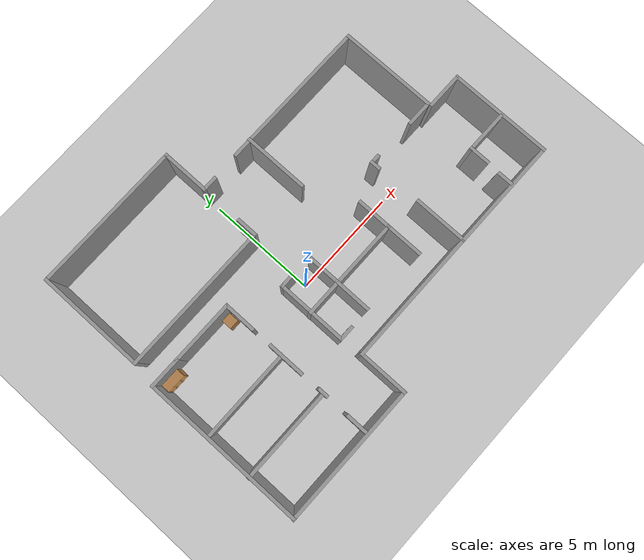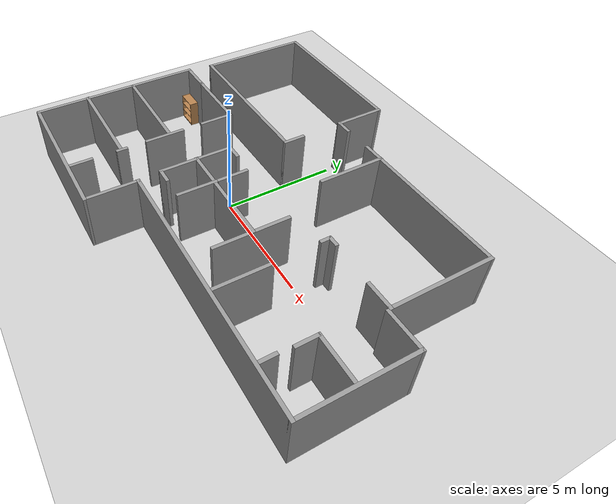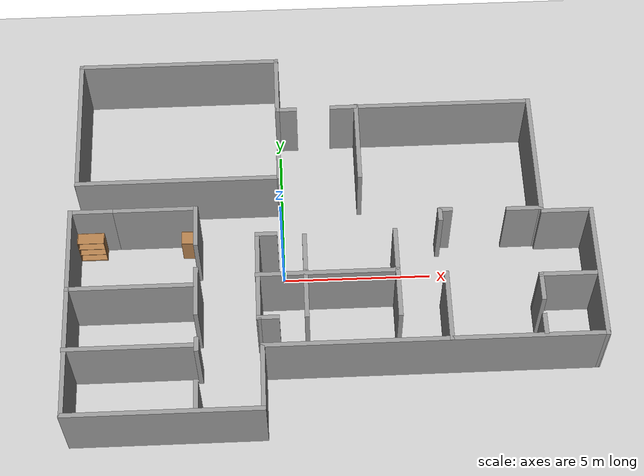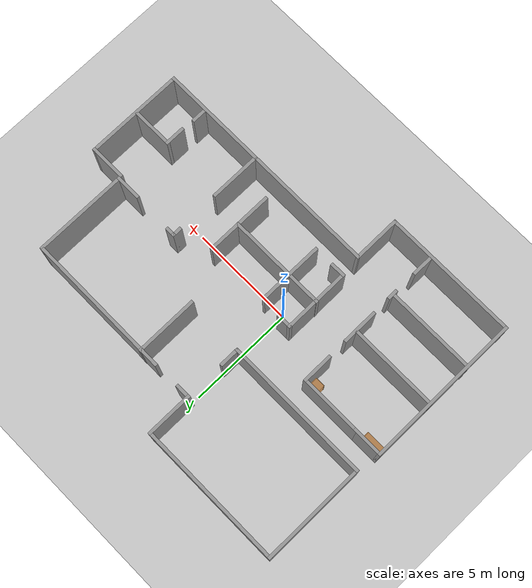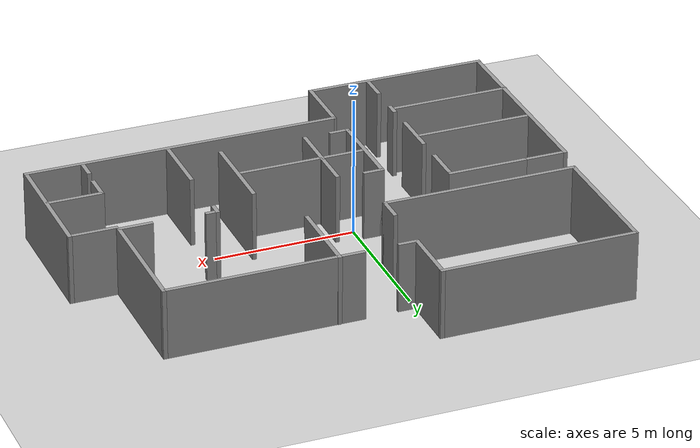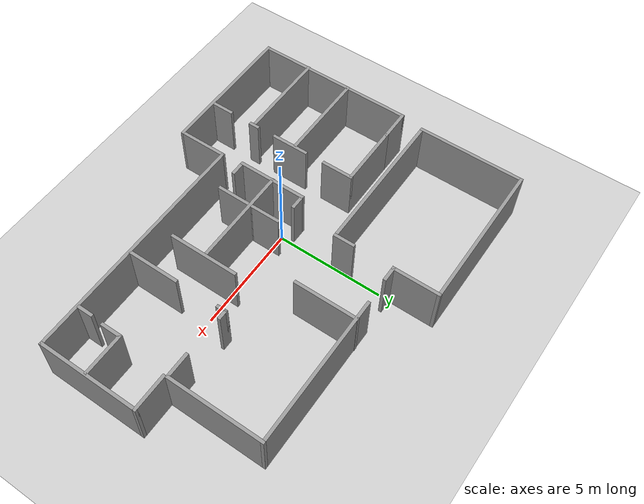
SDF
<sdf version="1.7">
 <world name="default">
  <light name="sun" type="directional">
   <pose>0 0 10 0 -0 0</pose>
   <diffuse>0.8 0.8 0.8 1</diffuse>
   <specular>0.2 0.2 0.2 1</specular>
   <attenuation>
    <range>1000</range>
    <constant>0.9</constant>
    <linear>0.01</linear>
    <quadratic>0.001</quadratic>
   </attenuation>
   <direction>-0.5 0.1 -0.9</direction>
   <spot><inner_angle>0</inner_angle><outer_angle>0</outer_angle><falloff>0</falloff></spot>
  </light>
  <model name="ground_plane">
   <static>1</static>
   <link name="link">
    <collision name="collision">
     <geometry><plane><normal>0 0 1</normal><size>100 100</size></plane></geometry>
     <surface><friction><ode><mu>100</mu><mu2>50</mu2></ode></friction></surface>
    </collision>
    <visual name="visual">
     <cast_shadows>0</cast_shadows>
     <geometry><plane><normal>0 0 1</normal><size>100 100</size></plane></geometry>
     <material>
      <script><uri>file://media/materials/scripts/gazebo.material</uri><name>Gazebo/Grey</name></script>
     </material>
    </visual>
   </link>
  </model>
  <gravity>0 0 -9.8</gravity>
  <magnetic_field>6e-06 2.3e-05 -4.2e-05</magnetic_field>
  <atmosphere type="adiabatic"/>
  <physics type="ode">
   <max_step_size>0.001</max_step_size>
   <real_time_factor>1</real_time_factor>
   <real_time_update_rate>1000</real_time_update_rate>
  </physics>
  <scene><ambient>0.4 0.4 0.4 1</ambient><background>0.7 0.7 0.7 1</background><shadows>1</shadows></scene>
  <audio><device>default</device></audio>
  <spherical_coordinates>
   <surface_model>EARTH_WGS84</surface_model>
   <latitude_deg>0</latitude_deg>
   <longitude_deg>0</longitude_deg>
   <elevation>0</elevation>
   <heading_deg>0</heading_deg>
  </spherical_coordinates>
  <model name="Office_demo">
   <pose>1.63534 0.874103 0 0 -0 0</pose>
   <link name="Wall_10">
    <collision name="Wall_10_Collision">
     <geometry><box><size>2.25 0.15 2.5</size></box></geometry>
     <pose>0 0 1.25 0 -0 0</pose>
    </collision>
    <visual name="Wall_10_Visual">
     <pose>0 0 1.25 0 -0 0</pose>
     <geometry><box><size>2.25 0.15 2.5</size></box></geometry>
     <material>
      <script><uri>file://media/materials/scripts/gazebo.material</uri><name>Gazebo/Grey</name></script>
      <ambient>1 1 1 1</ambient>
     </material>
     <meta><layer>0</layer></meta>
    </visual>
    <pose>-1.68064 5.6129 0 0 -0 1.5708</pose>
   </link>
   <link name="Wall_11">
    <collision name="Wall_11_Collision">
     <geometry><box><size>7 0.15 2.5</size></box></geometry>
     <pose>0 0 1.25 0 -0 0</pose>
    </collision>
    <visual name="Wall_11_Visual">
     <pose>0 0 1.25 0 -0 0</pose>
     <geometry><box><size>7 0.15 2.5</size></box></geometry>
     <material>
      <script><uri>file://media/materials/scripts/gazebo.material</uri><name>Gazebo/Grey</name></script>
      <ambient>1 1 1 1</ambient>
     </material>
     <meta><layer>0</layer></meta>
    </visual>
    <pose>-5.10564 6.6629 0 0 -0 3.14159</pose>
   </link>
   <link name="Wall_12">
    <collision name="Wall_12_Collision">
     <geometry><box><size>5 0.15 2.5</size></box></geometry>
     <pose>0 0 1.25 0 -0 0</pose>
    </collision>
    <visual name="Wall_12_Visual">
     <pose>0 0 1.25 0 -0 0</pose>
     <geometry><box><size>5 0.15 2.5</size></box></geometry>
     <material>
      <script><uri>file://media/materials/scripts/gazebo.material</uri><name>Gazebo/Grey</name></script>
      <ambient>1 1 1 1</ambient>
     </material>
     <meta><layer>0</layer></meta>
    </visual>
    <pose>-8.53064 4.2379 0 0 -0 -1.5708</pose>
   </link>
   <link name="Wall_13">
    <collision name="Wall_13_Collision">
     <geometry><box><size>7 0.15 2.5</size></box></geometry>
     <pose>0 0 1.25 0 -0 0</pose>
    </collision>
    <visual name="Wall_13_Visual">
     <pose>0 0 1.25 0 -0 0</pose>
     <geometry><box><size>7 0.15 2.5</size></box></geometry>
     <material>
      <script><uri>file://media/materials/scripts/gazebo.material</uri><name>Gazebo/Grey</name></script>
      <ambient>1 1 1 1</ambient>
     </material>
     <meta><layer>0</layer></meta>
    </visual>
    <pose>-5.10564 1.8129 0 0 -0 0</pose>
   </link>
   <link name="Wall_19">
    <collision name="Wall_19_Collision">
     <geometry><box><size>1.5 0.15 2.5</size></box></geometry>
     <pose>0 0 1.25 0 -0 0</pose>
    </collision>
    <visual name="Wall_19_Visual">
     <pose>0 0 1.25 0 -0 0</pose>
     <geometry><box><size>1.5 0.15 2.5</size></box></geometry>
     <material>
      <script><uri>file://media/materials/scripts/gazebo.material</uri><name>Gazebo/Grey</name></script>
      <ambient>1 1 1 1</ambient>
     </material>
     <meta><layer>0</layer></meta>
    </visual>
    <pose>-8.03543 0.695748 0 0 -0 3.14159</pose>
   </link>
   <link name="Wall_21">
    <collision name="Wall_21_Collision">
     <geometry><box><size>6.5 0.15 2.5</size></box></geometry>
     <pose>0 0 1.25 0 -0 0</pose>
    </collision>
    <visual name="Wall_21_Visual">
     <pose>0 0 1.25 0 -0 0</pose>
     <geometry><box><size>6.5 0.15 2.5</size></box></geometry>
     <material>
      <script><uri>file://media/materials/scripts/gazebo.material</uri><name>Gazebo/Grey</name></script>
      <ambient>1 1 1 1</ambient>
     </material>
     <meta><layer>0</layer></meta>
    </visual>
    <pose>-5.54408 -6.6629 0 0 -0 0</pose>
   </link>
   <link name="Wall_22">
    <collision name="Wall_22_Collision">
     <geometry><box><size>2.32687 0.15 2.5</size></box></geometry>
     <pose>0 0 1.25 0 -0 0</pose>
    </collision>
    <visual name="Wall_22_Visual">
     <pose>0 0 1.25 0 -0 0</pose>
     <geometry><box><size>2.32687 0.15 2.5</size></box></geometry>
     <material>
      <script><uri>file://media/materials/scripts/gazebo.material</uri><name>Gazebo/Grey</name></script>
      <ambient>1 1 1 1</ambient>
     </material>
     <meta><layer>0</layer></meta>
    </visual>
    <pose>-2.36902 -5.57446 0 0 -0 1.57074</pose>
   </link>
   <link name="Wall_24">
    <collision name="Wall_24_Collision">
     <geometry><box><size>11.25 0.15 2.5</size></box></geometry>
     <pose>0 0 1.25 0 -0 0</pose>
    </collision>
    <visual name="Wall_24_Visual">
     <pose>0 0 1.25 0 -0 0</pose>
     <geometry><box><size>11.25 0.15 2.5</size></box></geometry>
     <material>
      <script><uri>file://media/materials/scripts/gazebo.material</uri><name>Gazebo/Grey</name></script>
      <ambient>1 1 1 1</ambient>
     </material>
     <meta><layer>0</layer></meta>
    </visual>
    <pose>3.18104 -4.48603 0 0 -0 0</pose>
   </link>
   <link name="Wall_25">
    <collision name="Wall_25_Collision">
     <geometry><box><size>4.75 0.15 2.5</size></box></geometry>
     <pose>0 0 1.25 0 -0 0</pose>
    </collision>
    <visual name="Wall_25_Visual">
     <pose>0 0 1.25 0 -0 0</pose>
     <geometry><box><size>4.75 0.15 2.5</size></box></geometry>
     <material>
      <script><uri>file://media/materials/scripts/gazebo.material</uri><name>Gazebo/Grey</name></script>
      <ambient>1 1 1 1</ambient>
     </material>
     <meta><layer>0</layer></meta>
    </visual>
    <pose>8.73104 -2.18603 0 0 -0 1.5708</pose>
   </link>
   <link name="Wall_26">
    <collision name="Wall_26_Collision">
     <geometry><box><size>1.75 0.15 2.5</size></box></geometry>
     <pose>0 0 1.25 0 -0 0</pose>
    </collision>
    <visual name="Wall_26_Visual">
     <pose>0 0 1.25 0 -0 0</pose>
     <geometry><box><size>1.75 0.15 2.5</size></box></geometry>
     <material>
      <script><uri>file://media/materials/scripts/gazebo.material</uri><name>Gazebo/Grey</name></script>
      <ambient>1 1 1 1</ambient>
     </material>
     <meta><layer>0</layer></meta>
    </visual>
    <pose>7.93104 0.113971 0 0 -0 3.14159</pose>
   </link>
   <link name="Wall_28">
    <collision name="Wall_28_Collision">
     <geometry><box><size>3 0.15 2.5</size></box></geometry>
     <pose>0 0 1.25 0 -0 0</pose>
    </collision>
    <visual name="Wall_28_Visual">
     <pose>0 0 1.25 0 -0 0</pose>
     <geometry><box><size>3 0.15 2.5</size></box></geometry>
     <material>
      <script><uri>file://media/materials/scripts/gazebo.material</uri><name>Gazebo/Grey</name></script>
      <ambient>1 1 1 1</ambient>
     </material>
     <meta><layer>0</layer></meta>
    </visual>
    <pose>-5.93543 0.695748 0 0 -0 0</pose>
   </link>
   <link name="Wall_29">
    <collision name="Wall_29_Collision">
     <geometry><box><size>1.5 0.15 2.5</size></box></geometry>
     <pose>0 0 1.25 0 -0 0</pose>
    </collision>
    <visual name="Wall_29_Visual">
     <pose>0 0 1.25 0 -0 0</pose>
     <geometry><box><size>1.5 0.15 2.5</size></box></geometry>
     <material>
      <script><uri>file://media/materials/scripts/gazebo.material</uri><name>Gazebo/Grey</name></script>
      <ambient>1 1 1 1</ambient>
     </material>
     <meta><layer>0</layer></meta>
    </visual>
    <pose>-4.51043 0.020748 0 0 -0 -1.5708</pose>
   </link>
   <link name="Wall_3">
    <collision name="Wall_3_Collision">
     <geometry><box><size>4.5 0.15 2.5</size></box></geometry>
     <pose>0 0 1.25 0 -0 0</pose>
    </collision>
    <visual name="Wall_3_Visual">
     <pose>0 0 1.25 0 -0 0</pose>
     <geometry><box><size>4.5 0.15 2.5</size></box></geometry>
     <material>
      <script><uri>file://media/materials/scripts/gazebo.material</uri><name>Gazebo/Grey</name></script>
      <ambient>1 1 1 1</ambient>
     </material>
     <meta><layer>0</layer></meta>
    </visual>
    <pose>7.07002 2.42306 0 0 -0 1.5708</pose>
   </link>
   <link name="Wall_31">
    <collision name="Wall_31_Collision">
     <geometry><box><size>4.25 0.15 2.5</size></box></geometry>
     <pose>0 0 1.25 0 -0 0</pose>
    </collision>
    <visual name="Wall_31_Visual">
     <pose>0 0 1.25 0 -0 0</pose>
     <geometry><box><size>4.25 0.15 2.5</size></box></geometry>
     <material>
      <script><uri>file://media/materials/scripts/gazebo.material</uri><name>Gazebo/Grey</name></script>
      <ambient>1 1 1 1</ambient>
     </material>
     <meta><layer>0</layer></meta>
    </visual>
    <pose>-6.66104 -2.20813 0 0 -0 0</pose>
   </link>
   <link name="Wall_33">
    <collision name="Wall_33_Collision">
     <geometry><box><size>1.75 0.15 2.5</size></box></geometry>
     <pose>0 0 1.25 0 -0 0</pose>
    </collision>
    <visual name="Wall_33_Visual">
     <pose>0 0 1.25 0 -0 0</pose>
     <geometry><box><size>1.75 0.15 2.5</size></box></geometry>
     <material>
      <script><uri>file://media/materials/scripts/gazebo.material</uri><name>Gazebo/Grey</name></script>
      <ambient>1 1 1 1</ambient>
     </material>
     <meta><layer>0</layer></meta>
    </visual>
    <pose>-4.50365 -2.43291 0 0 -0 -1.5708</pose>
   </link>
   <link name="Wall_35">
    <collision name="Wall_35_Collision">
     <geometry><box><size>4.25 0.15 2.5</size></box></geometry>
     <pose>0 0 1.25 0 -0 0</pose>
    </collision>
    <visual name="Wall_35_Visual">
     <pose>0 0 1.25 0 -0 0</pose>
     <geometry><box><size>4.25 0.15 2.5</size></box></geometry>
     <material>
      <script><uri>file://media/materials/scripts/gazebo.material</uri><name>Gazebo/Grey</name></script>
      <ambient>1 1 1 1</ambient>
     </material>
     <meta><layer>0</layer></meta>
    </visual>
    <pose>-6.68105 -4.38813 0 0 -0 0</pose>
   </link>
   <link name="Wall_37">
    <collision name="Wall_37_Collision">
     <geometry><box><size>0.5 0.15 2.5</size></box></geometry>
     <pose>0 0 1.25 0 -0 0</pose>
    </collision>
    <visual name="Wall_37_Visual">
     <pose>0 0 1.25 0 -0 0</pose>
     <geometry><box><size>0.5 0.15 2.5</size></box></geometry>
     <material>
      <script><uri>file://media/materials/scripts/gazebo.material</uri><name>Gazebo/Grey</name></script>
      <ambient>1 1 1 1</ambient>
     </material>
     <meta><layer>0</layer></meta>
    </visual>
    <pose>-4.48491 -4.35957 0 0 -0 -1.5708</pose>
   </link>
   <link name="Wall_39">
    <collision name="Wall_39_Collision">
     <geometry><box><size>1 0.15 2.5</size></box></geometry>
     <pose>0 0 1.25 0 -0 0</pose>
    </collision>
    <visual name="Wall_39_Visual">
     <pose>0 0 1.25 0 -0 0</pose>
     <geometry><box><size>1 0.15 2.5</size></box></geometry>
     <material>
      <script><uri>file://media/materials/scripts/gazebo.material</uri><name>Gazebo/Grey</name></script>
      <ambient>1 1 1 1</ambient>
     </material>
     <meta><layer>0</layer></meta>
    </visual>
    <pose>-4.49872 -6.09655 0 0 -0 -1.5708</pose>
   </link>
   <link name="Wall_4">
    <collision name="Wall_4_Collision">
     <geometry><box><size>7 0.15 2.5</size></box></geometry>
     <pose>0 0 1.25 0 -0 0</pose>
    </collision>
    <visual name="Wall_4_Visual">
     <pose>0 0 1.25 0 -0 0</pose>
     <geometry><box><size>7 0.15 2.5</size></box></geometry>
     <material>
      <script><uri>file://media/materials/scripts/gazebo.material</uri><name>Gazebo/Grey</name></script>
      <ambient>1 1 1 1</ambient>
     </material>
     <meta><layer>0</layer></meta>
    </visual>
    <pose>3.64502 4.59806 0 0 -0 3.14159</pose>
   </link>
   <link name="Wall_41">
    <collision name="Wall_41_Collision">
     <geometry><box><size>7.5 0.15 2.5</size></box></geometry>
     <pose>0 0 1.25 0 -0 0</pose>
    </collision>
    <visual name="Wall_41_Visual">
     <pose>0 0 1.25 0 -0 0</pose>
     <geometry><box><size>7.5 0.15 2.5</size></box></geometry>
     <material>
      <script><uri>file://media/materials/scripts/gazebo.material</uri><name>Gazebo/Grey</name></script>
      <ambient>1 1 1 1</ambient>
     </material>
     <meta><layer>0</layer></meta>
    </visual>
    <pose>-8.71043 -2.97925 0 0 -0 -1.5708</pose>
   </link>
   <link name="Wall_43">
    <collision name="Wall_43_Collision">
     <geometry><box><size>2.5 0.15 2.5</size></box></geometry>
     <pose>0 0 1.25 0 -0 0</pose>
    </collision>
    <visual name="Wall_43_Visual">
     <pose>0 0 1.25 0 -0 0</pose>
     <geometry><box><size>2.5 0.15 2.5</size></box></geometry>
     <material>
      <script><uri>file://media/materials/scripts/gazebo.material</uri><name>Gazebo/Grey</name></script>
      <ambient>1 1 1 1</ambient>
     </material>
     <meta><layer>0</layer></meta>
    </visual>
    <pose>3.71077 -3.29577 0 0 -0 1.5708</pose>
   </link>
   <link name="Wall_45">
    <collision name="Wall_45_Collision">
     <geometry><box><size>0.5 0.15 2.5</size></box></geometry>
     <pose>0 0 1.25 0 -0 0</pose>
    </collision>
    <visual name="Wall_45_Visual">
     <pose>0 0 1.25 0 -0 0</pose>
     <geometry><box><size>0.5 0.15 2.5</size></box></geometry>
     <material>
      <script><uri>file://media/materials/scripts/gazebo.material</uri><name>Gazebo/Grey</name></script>
      <ambient>1 1 1 1</ambient>
     </material>
     <meta><layer>0</layer></meta>
    </visual>
    <pose>3.67109 0.134604 0 0 -0 1.5708</pose>
   </link>
   <link name="Wall_46">
    <collision name="Wall_46_Collision">
     <geometry><box><size>0.5 0.15 2.5</size></box></geometry>
     <pose>0 0 1.25 0 -0 0</pose>
    </collision>
    <visual name="Wall_46_Visual">
     <pose>0 0 1.25 0 -0 0</pose>
     <geometry><box><size>0.5 0.15 2.5</size></box></geometry>
     <material>
      <script><uri>file://media/materials/scripts/gazebo.material</uri><name>Gazebo/Grey</name></script>
      <ambient>1 1 1 1</ambient>
     </material>
     <meta><layer>0</layer></meta>
    </visual>
    <pose>3.84609 0.309604 0 0 -0 0</pose>
   </link>
   <link name="Wall_50">
    <collision name="Wall_50_Collision">
     <geometry><box><size>1.25 0.15 2.5</size></box></geometry>
     <pose>0 0 1.25 0 -0 0</pose>
    </collision>
    <visual name="Wall_50_Visual">
     <pose>0 0 1.25 0 -0 0</pose>
     <geometry><box><size>1.25 0.15 2.5</size></box></geometry>
     <material>
      <script><uri>file://media/materials/scripts/gazebo.material</uri><name>Gazebo/Grey</name></script>
      <ambient>1 1 1 1</ambient>
     </material>
     <meta><layer>0</layer></meta>
    </visual>
    <pose>6.52002 0.248063 0 0 -0 3.14159</pose>
   </link>
   <link name="Wall_52">
    <collision name="Wall_52_Collision">
     <geometry><box><size>2 0.15 2.5</size></box></geometry>
     <pose>0 0 1.25 0 -0 0</pose>
    </collision>
    <visual name="Wall_52_Visual">
     <pose>0 0 1.25 0 -0 0</pose>
     <geometry><box><size>2 0.15 2.5</size></box></geometry>
     <material>
      <script><uri>file://media/materials/scripts/gazebo.material</uri><name>Gazebo/Grey</name></script>
      <ambient>1 1 1 1</ambient>
     </material>
     <meta><layer>0</layer></meta>
    </visual>
    <pose>7.73192 -2.28865 0 0 -0 3.14159</pose>
   </link>
   <link name="Wall_53">
    <collision name="Wall_53_Collision">
     <geometry><box><size>1 0.15 2.5</size></box></geometry>
     <pose>0 0 1.25 0 -0 0</pose>
    </collision>
    <visual name="Wall_53_Visual">
     <pose>0 0 1.25 0 -0 0</pose>
     <geometry><box><size>1 0.15 2.5</size></box></geometry>
     <material>
      <script><uri>file://media/materials/scripts/gazebo.material</uri><name>Gazebo/Grey</name></script>
      <ambient>1 1 1 1</ambient>
     </material>
     <meta><layer>0</layer></meta>
    </visual>
    <pose>6.80692 -2.71365 0 0 -0 -1.5708</pose>
   </link>
   <link name="Wall_55">
    <collision name="Wall_55_Collision">
     <geometry><box><size>0.75 0.15 2.5</size></box></geometry>
     <pose>0 0 1.25 0 -0 0</pose>
    </collision>
    <visual name="Wall_55_Visual">
     <pose>0 0 1.25 0 -0 0</pose>
     <geometry><box><size>0.75 0.15 2.5</size></box></geometry>
     <material>
      <script><uri>file://media/materials/scripts/gazebo.material</uri><name>Gazebo/Grey</name></script>
      <ambient>1 1 1 1</ambient>
     </material>
     <meta><layer>0</layer></meta>
    </visual>
    <pose>6.75252 -4.0963 0 0 -0 -1.5708</pose>
   </link>
   <link name="Wall_57">
    <collision name="Wall_57_Collision">
     <geometry><box><size>0.75 0.15 2.5</size></box></geometry>
     <pose>0 0 1.25 0 -0 0</pose>
    </collision>
    <visual name="Wall_57_Visual">
     <pose>0 0 1.25 0 -0 0</pose>
     <geometry><box><size>0.75 0.15 2.5</size></box></geometry>
     <material>
      <script><uri>file://media/materials/scripts/gazebo.material</uri><name>Gazebo/Grey</name></script>
      <ambient>1 1 1 1</ambient>
     </material>
     <meta><layer>0</layer></meta>
    </visual>
    <pose>-2.17423 -0.393463 0 0 -0 3.14159</pose>
   </link>
   <link name="Wall_58">
    <collision name="Wall_58_Collision">
     <geometry><box><size>3.25 0.15 2.5</size></box></geometry>
     <pose>0 0 1.25 0 -0 0</pose>
    </collision>
    <visual name="Wall_58_Visual">
     <pose>0 0 1.25 0 -0 0</pose>
     <geometry><box><size>3.25 0.15 2.5</size></box></geometry>
     <material>
      <script><uri>file://media/materials/scripts/gazebo.material</uri><name>Gazebo/Grey</name></script>
      <ambient>1 1 1 1</ambient>
     </material>
     <meta><layer>0</layer></meta>
    </visual>
    <pose>-2.47423 -1.94346 0 0 -0 -1.5708</pose>
   </link>
   <link name="Wall_59">
    <collision name="Wall_59_Collision">
     <geometry><box><size>0.75 0.15 2.5</size></box></geometry>
     <pose>0 0 1.25 0 -0 0</pose>
    </collision>
    <visual name="Wall_59_Visual">
     <pose>0 0 1.25 0 -0 0</pose>
     <geometry><box><size>0.75 0.15 2.5</size></box></geometry>
     <material>
      <script><uri>file://media/materials/scripts/gazebo.material</uri><name>Gazebo/Grey</name></script>
      <ambient>1 1 1 1</ambient>
     </material>
     <meta><layer>0</layer></meta>
    </visual>
    <pose>-2.17423 -3.49346 0 0 -0 0</pose>
   </link>
   <link name="Wall_6">
    <collision name="Wall_6_Collision">
     <geometry><box><size>3 0.15 2.5</size></box></geometry>
     <pose>0 0 1.25 0 -0 0</pose>
    </collision>
    <visual name="Wall_6_Visual">
     <pose>0 0 1.25 0 -0 0</pose>
     <geometry><box><size>3 0.15 2.5</size></box></geometry>
     <material>
      <script><uri>file://media/materials/scripts/gazebo.material</uri><name>Gazebo/Grey</name></script>
      <ambient>1 1 1 1</ambient>
     </material>
     <meta><layer>0</layer></meta>
    </visual>
    <pose>1.05877 3.19064 0 0 -0 -1.5708</pose>
   </link>
   <link name="Wall_61">
    <collision name="Wall_61_Collision">
     <geometry><box><size>4.75 0.15 2.5</size></box></geometry>
     <pose>0 0 1.25 0 -0 0</pose>
    </collision>
    <visual name="Wall_61_Visual">
     <pose>0 0 1.25 0 -0 0</pose>
     <geometry><box><size>4.75 0.15 2.5</size></box></geometry>
     <material>
      <script><uri>file://media/materials/scripts/gazebo.material</uri><name>Gazebo/Grey</name></script>
      <ambient>1 1 1 1</ambient>
     </material>
     <meta><layer>0</layer></meta>
    </visual>
    <pose>-0.192292 -1.9189 0 0 -0 0</pose>
   </link>
   <link name="Wall_63">
    <collision name="Wall_63_Collision">
     <geometry><box><size>3.25 0.15 2.5</size></box></geometry>
     <pose>0 0 1.25 0 -0 0</pose>
    </collision>
    <visual name="Wall_63_Visual">
     <pose>0 0 1.25 0 -0 0</pose>
     <geometry><box><size>3.25 0.15 2.5</size></box></geometry>
     <material>
      <script><uri>file://media/materials/scripts/gazebo.material</uri><name>Gazebo/Grey</name></script>
      <ambient>1 1 1 1</ambient>
     </material>
     <meta><layer>0</layer></meta>
    </visual>
    <pose>2.12347 -1.98291 0 0 -0 -1.5708</pose>
   </link>
   <link name="Wall_66">
    <collision name="Wall_66_Collision">
     <geometry><box><size>1.5 0.15 2.5</size></box></geometry>
     <pose>0 0 1.25 0 -0 0</pose>
    </collision>
    <visual name="Wall_66_Visual">
     <pose>0 0 1.25 0 -0 0</pose>
     <geometry><box><size>1.5 0.15 2.5</size></box></geometry>
     <material>
      <script><uri>file://media/materials/scripts/gazebo.material</uri><name>Gazebo/Grey</name></script>
      <ambient>1 1 1 1</ambient>
     </material>
     <meta><layer>0</layer></meta>
    </visual>
    <pose>-0.901102 -1.1913 0 0 -0 1.5708</pose>
   </link>
   <link name="Wall_68">
    <collision name="Wall_68_Collision">
     <geometry><box><size>1.75 0.15 2.5</size></box></geometry>
     <pose>0 0 1.25 0 -0 0</pose>
    </collision>
    <visual name="Wall_68_Visual">
     <pose>0 0 1.25 0 -0 0</pose>
     <geometry><box><size>1.75 0.15 2.5</size></box></geometry>
     <material>
      <script><uri>file://media/materials/scripts/gazebo.material</uri><name>Gazebo/Grey</name></script>
      <ambient>1 1 1 1</ambient>
     </material>
     <meta><layer>0</layer></meta>
    </visual>
    <pose>-0.90439 -2.6663 0 0 -0 -1.57491</pose>
   </link>
   <link name="Wall_72">
    <collision name="Wall_72_Collision">
     <geometry><box><size>1 0.15 2.5</size></box></geometry>
     <pose>0 0 1.25 0 -0 0</pose>
    </collision>
    <visual name="Wall_72_Visual">
     <pose>0 0 1.25 0 -0 0</pose>
     <geometry><box><size>1 0.15 2.5</size></box></geometry>
     <material>
      <script><uri>file://media/materials/scripts/gazebo.material</uri><name>Gazebo/Grey</name></script>
      <ambient>1 1 1 1</ambient>
     </material>
     <meta><layer>0</layer></meta>
    </visual>
    <pose>-1.68064 2.2379 0 0 -0 1.5708</pose>
   </link>
   <link name="Wall_9">
    <collision name="Wall_9_Collision">
     <geometry><box><size>0.75 0.15 2.5</size></box></geometry>
     <pose>0 0 1.25 0 -0 0</pose>
    </collision>
    <visual name="Wall_9_Visual">
     <pose>0 0 1.25 0 -0 0</pose>
     <geometry><box><size>0.75 0.15 2.5</size></box></geometry>
     <material>
      <script><uri>file://media/materials/scripts/gazebo.material</uri><name>Gazebo/Grey</name></script>
      <ambient>1 1 1 1</ambient>
     </material>
     <meta><layer>0</layer></meta>
    </visual>
    <pose>-1.38064 4.5629 0 0 -0 3.14159</pose>
   </link>
   <static>1</static>
  </model>
  <model name="bookshelf">
   <static>1</static>
   <link name="link">
    <inertial><mass>1</mass></inertial>
    <collision name="back">
     <pose>0 0.005 0.6 0 -0 0</pose>
     <geometry><box><size>0.9 0.01 1.2</size></box></geometry>
    </collision>
    <visual name="visual1">
     <pose>0 0.005 0.6 0 -0 0</pose>
     <geometry><box><size>0.9 0.01 1.2</size></box></geometry>
     <material>
      <script><uri>file://media/materials/scripts/gazebo.material</uri><name>Gazebo/Wood</name></script>
     </material>
    </visual>
    <collision name="left_side">
     <pose>0.45 -0.195 0.6 0 -0 0</pose>
     <geometry><box><size>0.02 0.4 1.2</size></box></geometry>
    </collision>
    <visual name="visual2">
     <pose>0.45 -0.195 0.6 0 -0 0</pose>
     <geometry><box><size>0.02 0.4 1.2</size></box></geometry>
     <material>
      <script><uri>file://media/materials/scripts/gazebo.material</uri><name>Gazebo/Wood</name></script>
     </material>
    </visual>
    <collision name="right_side">
     <pose>-0.45 -0.195 0.6 0 -0 0</pose>
     <geometry><box><size>0.02 0.4 1.2</size></box></geometry>
    </collision>
    <visual name="visual3">
     <pose>-0.45 -0.195 0.6 0 -0 0</pose>
     <geometry><box><size>0.02 0.4 1.2</size></box></geometry>
     <material>
      <script><uri>file://media/materials/scripts/gazebo.material</uri><name>Gazebo/Wood</name></script>
     </material>
    </visual>
    <collision name="bottom">
     <pose>0 -0.195 0.03 0 -0 0</pose>
     <geometry><box><size>0.88 0.4 0.06</size></box></geometry>
    </collision>
    <visual name="visual4">
     <pose>0 -0.195 0.03 0 -0 0</pose>
     <geometry><box><size>0.88 0.4 0.06</size></box></geometry>
     <material>
      <script><uri>file://media/materials/scripts/gazebo.material</uri><name>Gazebo/Wood</name></script>
     </material>
    </visual>
    <collision name="top">
     <pose>0 -0.195 1.19 0 -0 0</pose>
     <geometry><box><size>0.88 0.4 0.02</size></box></geometry>
    </collision>
    <visual name="visual5">
     <pose>0 -0.195 1.19 0 -0 0</pose>
     <geometry><box><size>0.88 0.4 0.02</size></box></geometry>
     <material>
      <script><uri>file://media/materials/scripts/gazebo.material</uri><name>Gazebo/Wood</name></script>
     </material>
    </visual>
    <collision name="low_shelf">
     <pose>0 -0.195 0.43 0 -0 0</pose>
     <geometry><box><size>0.88 0.4 0.02</size></box></geometry>
    </collision>
    <visual name="visual6">
     <pose>0 -0.195 0.43 0 -0 0</pose>
     <geometry><box><size>0.88 0.4 0.02</size></box></geometry>
     <material>
      <script><uri>file://media/materials/scripts/gazebo.material</uri><name>Gazebo/Wood</name></script>
     </material>
    </visual>
    <collision name="high_shelf">
     <pose>0 -0.195 0.8 0 -0 0</pose>
     <geometry><box><size>0.88 0.4 0.02</size></box></geometry>
    </collision>
    <visual name="visual7">
     <pose>0 -0.195 0.8 0 -0 0</pose>
     <geometry><box><size>0.88 0.4 0.02</size></box></geometry>
     <material>
      <script><uri>file://media/materials/scripts/gazebo.material</uri><name>Gazebo/Wood</name></script>
     </material>
    </visual>
   </link>
   <pose>-6.54069 1.48188 0 0 -0 0</pose>
  </model>
  <model name="cabinet">
   <static>1</static>
   <link name="cabinet_bottom_plate">
    <inertial>
     <pose>0 0 -1 0 -0 0</pose>
     <inertia><ixx>2.05</ixx><ixy>0</ixy><ixz>0</ixz><iyy>2.05</iyy><iyz>0</iyz><izz>2.05</izz></inertia>
     <mass>25</mass>
    </inertial>
    <collision name="cabinet_bottom_plate_geom">
     <pose>0 0 0.01 0 -0 0</pose>
     <geometry><box><size>0.45 0.45 0.02</size></box></geometry>
    </collision>
    <visual name="cabinet_bottom_plate_geom_visual">
     <pose>0 0 0.01 0 -0 0</pose>
     <geometry><box><size>0.45 0.45 0.02</size></box></geometry>
     <material>
      <script><uri>file://media/materials/scripts/gazebo.material</uri><name>Gazebo/Wood</name></script>
     </material>
    </visual>
    <collision name="cabinet_bottom_plate_geom_cabinet_back_plate">
     <pose>0.235 0 0.51 0 -0 0</pose>
     <geometry><box><size>0.02 0.45 1.02</size></box></geometry>
    </collision>
    <visual name="cabinet_bottom_plate_geom_cabinet_back_plate_visual">
     <pose>0.235 0 0.51 0 -0 0</pose>
     <geometry><box><size>0.02 0.45 1.02</size></box></geometry>
     <material>
      <script><uri>file://media/materials/scripts/gazebo.material</uri><name>Gazebo/Wood</name></script>
     </material>
    </visual>
    <collision name="cabinet_bottom_plate_geom_cabinet_left_plate">
     <pose>0 0.235 0.51 0 -0 0</pose>
     <geometry><box><size>0.45 0.02 1.02</size></box></geometry>
    </collision>
    <visual name="cabinet_bottom_plate_geom_cabinet_left_plate_visual">
     <pose>0 0.235 0.51 0 -0 0</pose>
     <geometry><box><size>0.45 0.02 1.02</size></box></geometry>
     <material>
      <script><uri>file://media/materials/scripts/gazebo.material</uri><name>Gazebo/Wood</name></script>
     </material>
    </visual>
    <collision name="cabinet_bottom_plate_geom_cabinet_middle_plate">
     <pose>0 0 0.51 0 -0 0</pose>
     <geometry><box><size>0.45 0.45 0.02</size></box></geometry>
    </collision>
    <visual name="cabinet_bottom_plate_geom_cabinet_middle_plate_visual">
     <pose>0 0 0.51 0 -0 0</pose>
     <geometry><box><size>0.45 0.45 0.02</size></box></geometry>
     <material>
      <script><uri>file://media/materials/scripts/gazebo.material</uri><name>Gazebo/Wood</name></script>
     </material>
    </visual>
    <collision name="cabinet_bottom_plate_geom_cabinet_right_plate">
     <pose>0 -0.235 0.51 0 -0 0</pose>
     <geometry><box><size>0.45 0.02 1.02</size></box></geometry>
    </collision>
    <visual name="cabinet_bottom_plate_geom_cabinet_right_plate_visual">
     <pose>0 -0.235 0.51 0 -0 0</pose>
     <geometry><box><size>0.45 0.02 1.02</size></box></geometry>
     <material>
      <script><uri>file://media/materials/scripts/gazebo.material</uri><name>Gazebo/Wood</name></script>
     </material>
    </visual>
    <collision name="cabinet_bottom_plate_geom_cabinet_top_plate">
     <pose>0 0 1.01 0 -0 0</pose>
     <geometry><box><size>0.45 0.45 0.02</size></box></geometry>
    </collision>
    <visual name="cabinet_bottom_plate_geom_cabinet_top_plate_visual">
     <pose>0 0 1.01 0 -0 0</pose>
     <geometry><box><size>0.45 0.45 0.02</size></box></geometry>
     <material>
      <script><uri>file://media/materials/scripts/gazebo.material</uri><name>Gazebo/Wood</name></script>
     </material>
    </visual>
   </link>
   <pose>-3.22922 1.23419 0.090684 0 -0 0</pose>
  </model>
 </world>
</sdf>
